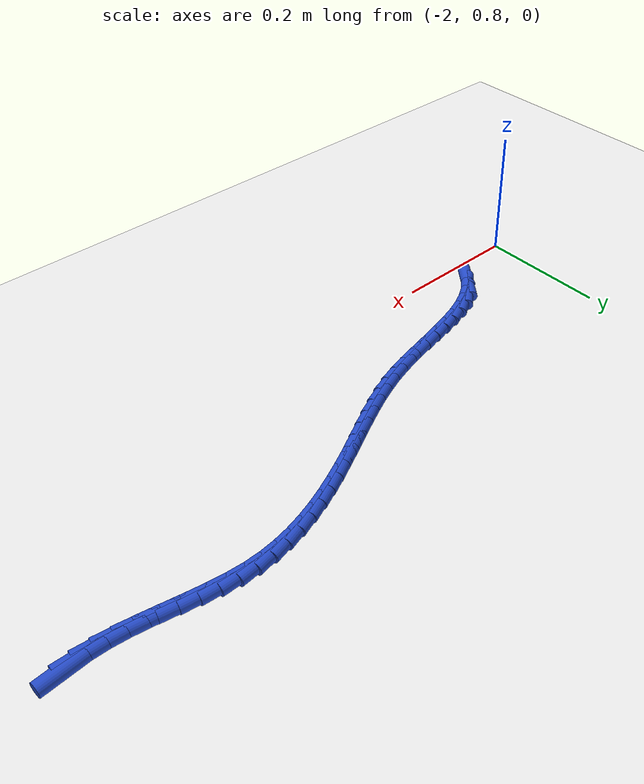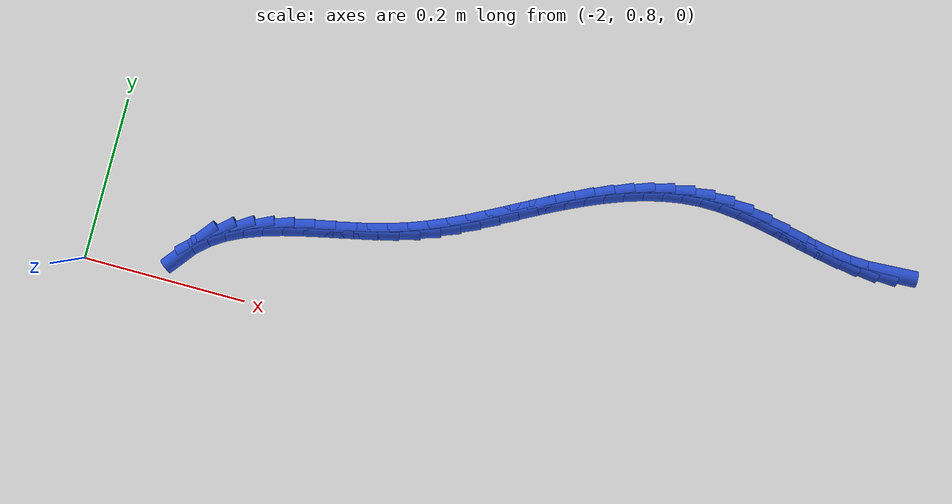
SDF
<sdf version="1.6">
 <world name="default">
  <model name="ground_plane">
   <static>1</static>
   <link name="link">
    <collision name="collision">
     <geometry><plane><normal>0 0 1</normal><size>100 100</size></plane></geometry>
     <surface><friction><ode><mu>100</mu><mu2>50</mu2></ode></friction></surface>
    </collision>
    <visual name="visual">
     <cast_shadows>0</cast_shadows>
     <geometry><plane><normal>0 0 1</normal><size>100 100</size></plane></geometry>
     <material>
      <script><uri>file://media/materials/scripts/gazebo.material</uri><name>Gazebo/WhiteGlow</name></script>
     </material>
    </visual>
   </link>
  </model>
  <model name="line">
   <link name="link_72">
    <pose>-1.06046396266168 1.0387354085762412 0.01 0 1.57 0.05624951157760972</pose>
    <collision name="collision">
     <geometry><cylinder><radius>0.01</radius><length>0.08</length></cylinder></geometry>
    </collision>
    <visual name="visual">
     <material>
      <script><name>Gazebo/Blue</name><uri>file://media/materials/scripts/gazebo.material</uri></script>
     </material>
     <geometry><cylinder><radius>0.01</radius><length>0.08</length></cylinder></geometry>
    </visual>
   </link>
   <link name="link_73">
    <pose>-1.0832203736721846 1.0374540198452828 0.01 0 1.57 -0.04786980906195709</pose>
    <collision name="collision">
     <geometry><cylinder><radius>0.01</radius><length>0.08</length></cylinder></geometry>
    </collision>
    <visual name="visual">
     <material>
      <script><name>Gazebo/Blue</name><uri>file://media/materials/scripts/gazebo.material</uri></script>
     </material>
     <geometry><cylinder><radius>0.01</radius><length>0.08</length></cylinder></geometry>
    </visual>
   </link>
   <link name="link_74">
    <pose>-1.1063829769597664 1.0385636569562495 0.01 0 1.57 -0.12462992173371414</pose>
    <collision name="collision">
     <geometry><cylinder><radius>0.01</radius><length>0.08</length></cylinder></geometry>
    </collision>
    <visual name="visual">
     <material>
      <script><name>Gazebo/Blue</name><uri>file://media/materials/scripts/gazebo.material</uri></script>
     </material>
     <geometry><cylinder><radius>0.01</radius><length>0.08</length></cylinder></geometry>
    </visual>
   </link>
   <link name="link_75">
    <pose>-1.1298830468937548 1.041507727681919 0.01 0 1.57 -0.17579058910191128</pose>
    <collision name="collision">
     <geometry><cylinder><radius>0.01</radius><length>0.08</length></cylinder></geometry>
    </collision>
    <visual name="visual">
     <material>
      <script><name>Gazebo/Blue</name><uri>file://media/materials/scripts/gazebo.material</uri></script>
     </material>
     <geometry><cylinder><radius>0.01</radius><length>0.08</length></cylinder></geometry>
    </visual>
   </link>
   <link name="link_76">
    <pose>-1.1536518578434793 1.0457296397950673 0.01 0 1.57 -0.20338151477144173</pose>
    <collision name="collision">
     <geometry><cylinder><radius>0.01</radius><length>0.08</length></cylinder></geometry>
    </collision>
    <visual name="visual">
     <material>
      <script><name>Gazebo/Blue</name><uri>file://media/materials/scripts/gazebo.material</uri></script>
     </material>
     <geometry><cylinder><radius>0.01</radius><length>0.08</length></cylinder></geometry>
    </visual>
   </link>
   <link name="link_77">
    <pose>-1.1776206841782693 1.0506728010684716 0.01 0 1.57 -0.20885109954804257</pose>
    <collision name="collision">
     <geometry><cylinder><radius>0.01</radius><length>0.08</length></cylinder></geometry>
    </collision>
    <visual name="visual">
     <material>
      <script><name>Gazebo/Blue</name><uri>file://media/materials/scripts/gazebo.material</uri></script>
     </material>
     <geometry><cylinder><radius>0.01</radius><length>0.08</length></cylinder></geometry>
    </visual>
   </link>
   <link name="link_78">
    <pose>-1.2017208002674544 1.0557806192749093 0.01 0 1.57 -0.19274914241024937</pose>
    <collision name="collision">
     <geometry><cylinder><radius>0.01</radius><length>0.08</length></cylinder></geometry>
    </collision>
    <visual name="visual">
     <material>
      <script><name>Gazebo/Blue</name><uri>file://media/materials/scripts/gazebo.material</uri></script>
     </material>
     <geometry><cylinder><radius>0.01</radius><length>0.08</length></cylinder></geometry>
    </visual>
   </link>
   <link name="link_79">
    <pose>-1.2258834804803633 1.0604965021871566 0.01 0 1.57 -0.1547097906782739</pose>
    <collision name="collision">
     <geometry><cylinder><radius>0.01</radius><length>0.08</length></cylinder></geometry>
    </collision>
    <visual name="visual">
     <material>
      <script><name>Gazebo/Blue</name><uri>file://media/materials/scripts/gazebo.material</uri></script>
     </material>
     <geometry><cylinder><radius>0.01</radius><length>0.08</length></cylinder></geometry>
    </visual>
   </link>
   <link name="link_80">
    <pose>-1.2500399991863256 1.0642638575779906 0.01 0 1.57 -0.09366541770067531</pose>
    <collision name="collision">
     <geometry><cylinder><radius>0.01</radius><length>0.08</length></cylinder></geometry>
    </collision>
    <visual name="visual">
     <material>
      <script><name>Gazebo/Blue</name><uri>file://media/materials/scripts/gazebo.material</uri></script>
     </material>
     <geometry><cylinder><radius>0.01</radius><length>0.08</length></cylinder></geometry>
    </visual>
   </link>
   <link name="link_81">
    <pose>-1.2741216307546708 1.066526093220188 0.01 0 1.57 -0.008721796539898302</pose>
    <collision name="collision">
     <geometry><cylinder><radius>0.01</radius><length>0.08</length></cylinder></geometry>
    </collision>
    <visual name="visual">
     <material>
      <script><name>Gazebo/Blue</name><uri>file://media/materials/scripts/gazebo.material</uri></script>
     </material>
     <geometry><cylinder><radius>0.01</radius><length>0.08</length></cylinder></geometry>
    </visual>
   </link>
   <link name="link_82">
    <pose>-1.2980600378528797 1.0667348844306455 0.01 0 1.57 0.08647618509906822</pose>
    <collision name="collision">
     <geometry><cylinder><radius>0.01</radius><length>0.08</length></cylinder></geometry>
    </collision>
    <visual name="visual">
     <material>
      <script><name>Gazebo/Blue</name><uri>file://media/materials/scripts/gazebo.material</uri></script>
     </material>
     <geometry><cylinder><radius>0.01</radius><length>0.08</length></cylinder></geometry>
    </visual>
   </link>
   <link name="link_83">
    <pose>-1.3218026018359992 1.064676584768645 0.01 0 1.57 0.17247524556729593</pose>
    <collision name="collision">
     <geometry><cylinder><radius>0.01</radius><length>0.08</length></cylinder></geometry>
    </collision>
    <visual name="visual">
     <material>
      <script><name>Gazebo/Blue</name><uri>file://media/materials/scripts/gazebo.material</uri></script>
     </material>
     <geometry><cylinder><radius>0.01</radius><length>0.08</length></cylinder></geometry>
    </visual>
   </link>
   <link name="link_84">
    <pose>-1.3453174914587496 1.060580147747044 0.01 0 1.57 0.2474472027159994</pose>
    <collision name="collision">
     <geometry><cylinder><radius>0.01</radius><length>0.08</length></cylinder></geometry>
    </collision>
    <visual name="visual">
     <material>
      <script><name>Gazebo/Blue</name><uri>file://media/materials/scripts/gazebo.material</uri></script>
     </material>
     <geometry><cylinder><radius>0.01</radius><length>0.08</length></cylinder></geometry>
    </visual>
   </link>
   <link name="link_85">
    <pose>-1.3685743024062427 1.054704908712613 0.01 0 1.57 0.3114728816057139</pose>
    <collision name="collision">
     <geometry><cylinder><radius>0.01</radius><length>0.08</length></cylinder></geometry>
    </collision>
    <visual name="visual">
     <material>
      <script><name>Gazebo/Blue</name><uri>file://media/materials/scripts/gazebo.material</uri></script>
     </material>
     <geometry><cylinder><radius>0.01</radius><length>0.08</length></cylinder></geometry>
    </visual>
   </link>
   <link name="link_86">
    <pose>-1.3915426303635903 1.047310203012124 0.01 0 1.57 0.3649994658263487</pose>
    <collision name="collision">
     <geometry><cylinder><radius>0.01</radius><length>0.08</length></cylinder></geometry>
    </collision>
    <visual name="visual">
     <material>
      <script><name>Gazebo/Blue</name><uri>file://media/materials/scripts/gazebo.material</uri></script>
     </material>
     <geometry><cylinder><radius>0.01</radius><length>0.08</length></cylinder></geometry>
    </visual>
   </link>
   <link name="link_87">
    <pose>-1.4141920710159026 1.038655365992347 0.01 0 1.57 0.4086146388637475</pose>
    <collision name="collision">
     <geometry><cylinder><radius>0.01</radius><length>0.08</length></cylinder></geometry>
    </collision>
    <visual name="visual">
     <material>
      <script><name>Gazebo/Blue</name><uri>file://media/materials/scripts/gazebo.material</uri></script>
     </material>
     <geometry><cylinder><radius>0.01</radius><length>0.08</length></cylinder></geometry>
    </visual>
   </link>
   <link name="link_88">
    <pose>-1.4364922200482915 1.028999733000054 0.01 0 1.57 0.44288533850997686</pose>
    <collision name="collision">
     <geometry><cylinder><radius>0.01</radius><length>0.08</length></cylinder></geometry>
    </collision>
    <visual name="visual">
     <material>
      <script><name>Gazebo/Blue</name><uri>file://media/materials/scripts/gazebo.material</uri></script>
     </material>
     <geometry><cylinder><radius>0.01</radius><length>0.08</length></cylinder></geometry>
    </visual>
   </link>
   <link name="link_89">
    <pose>-1.4584126731458673 1.018602639382016 0.01 0 1.57 0.46824573908860495</pose>
    <collision name="collision">
     <geometry><cylinder><radius>0.01</radius><length>0.08</length></cylinder></geometry>
    </collision>
    <visual name="visual">
     <material>
      <script><name>Gazebo/Blue</name><uri>file://media/materials/scripts/gazebo.material</uri></script>
     </material>
     <geometry><cylinder><radius>0.01</radius><length>0.08</length></cylinder></geometry>
    </visual>
   </link>
   <link name="link_90">
    <pose>-1.479923650835961 1.0077232269129632 0.01 0 1.57 0.4843762856761829</pose>
    <collision name="collision">
     <geometry><cylinder><radius>0.01</radius><length>0.08</length></cylinder></geometry>
    </collision>
    <visual name="visual">
     <material>
      <script><name>Gazebo/Blue</name><uri>file://media/materials/scripts/gazebo.material</uri></script>
     </material>
     <geometry><cylinder><radius>0.01</radius><length>0.08</length></cylinder></geometry>
    </visual>
   </link>
   <link name="link_91">
    <pose>-1.5010644336563144 0.9965992430272708 0.01 0 1.57 0.49006831949686797</pose>
    <collision name="collision">
     <geometry><cylinder><radius>0.01</radius><length>0.08</length></cylinder></geometry>
    </collision>
    <visual name="visual">
     <material>
      <script><name>Gazebo/Blue</name><uri>file://media/materials/scripts/gazebo.material</uri></script>
     </material>
     <geometry><cylinder><radius>0.01</radius><length>0.08</length></cylinder></geometry>
    </visual>
   </link>
   <link name="link_92">
    <pose>-1.522005042913264 0.9854279325227596 0.01 0 1.57 0.48495443753367795</pose>
    <collision name="collision">
     <geometry><cylinder><radius>0.01</radius><length>0.08</length></cylinder></geometry>
    </collision>
    <visual name="visual">
     <material>
      <script><name>Gazebo/Blue</name><uri>file://media/materials/scripts/gazebo.material</uri></script>
     </material>
     <geometry><cylinder><radius>0.01</radius><length>0.08</length></cylinder></geometry>
    </visual>
   </link>
   <link name="link_93">
    <pose>-1.5429300594402802 0.9744020297508015 0.01 0 1.57 0.46897167493604397</pose>
    <collision name="collision">
     <geometry><cylinder><radius>0.01</radius><length>0.08</length></cylinder></geometry>
    </collision>
    <visual name="visual">
     <material>
      <script><name>Gazebo/Blue</name><uri>file://media/materials/scripts/gazebo.material</uri></script>
     </material>
     <geometry><cylinder><radius>0.01</radius><length>0.08</length></cylinder></geometry>
    </visual>
   </link>
   <link name="link_94">
    <pose>-1.5640240640708292 0.9637142690627678 0.01 0 1.57 0.4422792945330084</pose>
    <collision name="collision">
     <geometry><cylinder><radius>0.01</radius><length>0.08</length></cylinder></geometry>
    </collision>
    <visual name="visual">
     <material>
      <script><name>Gazebo/Blue</name><uri>file://media/materials/scripts/gazebo.material</uri></script>
     </material>
     <geometry><cylinder><radius>0.01</radius><length>0.08</length></cylinder></geometry>
    </visual>
   </link>
   <link name="link_95">
    <pose>-1.585471637638378 0.9535573848100296 0.01 0 1.57 0.4053075068800579</pose>
    <collision name="collision">
     <geometry><cylinder><radius>0.01</radius><length>0.08</length></cylinder></geometry>
    </collision>
    <visual name="visual">
     <material>
      <script><name>Gazebo/Blue</name><uri>file://media/materials/scripts/gazebo.material</uri></script>
     </material>
     <geometry><cylinder><radius>0.01</radius><length>0.08</length></cylinder></geometry>
    </visual>
   </link>
   <link name="link_96">
    <pose>-1.6074573609763947 0.9441241113439587 0.01 0 1.57 0.3588192412352773</pose>
    <collision name="collision">
     <geometry><cylinder><radius>0.01</radius><length>0.08</length></cylinder></geometry>
    </collision>
    <visual name="visual">
     <material>
      <script><name>Gazebo/Blue</name><uri>file://media/materials/scripts/gazebo.material</uri></script>
     </material>
     <geometry><cylinder><radius>0.01</radius><length>0.08</length></cylinder></geometry>
    </visual>
   </link>
   <link name="link_97">
    <pose>-1.6301658149183462 0.9356071830159265 0.01 0 1.57 0.3043173310538755</pose>
    <collision name="collision">
     <geometry><cylinder><radius>0.01</radius><length>0.08</length></cylinder></geometry>
    </collision>
    <visual name="visual">
     <material>
      <script><name>Gazebo/Blue</name><uri>file://media/materials/scripts/gazebo.material</uri></script>
     </material>
     <geometry><cylinder><radius>0.01</radius><length>0.08</length></cylinder></geometry>
    </visual>
   </link>
   <link name="link_98">
    <pose>-1.6537748708994935 0.9281922146343788 0.01 0 1.57 0.25507290129477644</pose>
    <collision name="collision">
     <geometry><cylinder><radius>0.01</radius><length>0.08</length></cylinder></geometry>
    </collision>
    <visual name="visual">
     <material>
      <script><name>Gazebo/Blue</name><uri>file://media/materials/scripts/gazebo.material</uri></script>
     </material>
     <geometry><cylinder><radius>0.01</radius><length>0.08</length></cylinder></geometry>
    </visual>
   </link>
   <link name="link_99">
    <pose>-1.67822792825987 0.9218160156610782 0.01 0 1.57 0.22492422806569026</pose>
    <collision name="collision">
     <geometry><cylinder><radius>0.01</radius><length>0.08</length></cylinder></geometry>
    </collision>
    <visual name="visual">
     <material>
      <script><name>Gazebo/Blue</name><uri>file://media/materials/scripts/gazebo.material</uri></script>
     </material>
     <geometry><cylinder><radius>0.01</radius><length>0.08</length></cylinder></geometry>
    </visual>
   </link>
   <link name="link_100">
    <pose>-1.703178225076942 0.9161074967715482 0.01 0 1.57 0.21323288389922973</pose>
    <collision name="collision">
     <geometry><cylinder><radius>0.01</radius><length>0.08</length></cylinder></geometry>
    </collision>
    <visual name="visual">
     <material>
      <script><name>Gazebo/Blue</name><uri>file://media/materials/scripts/gazebo.material</uri></script>
     </material>
     <geometry><cylinder><radius>0.01</radius><length>0.08</length></cylinder></geometry>
    </visual>
   </link>
   <link name="link_101">
    <pose>-1.7282609934033621 0.9106764619103341 0.01 0 1.57 0.21949018105076332</pose>
    <collision name="collision">
     <geometry><cylinder><radius>0.01</radius><length>0.08</length></cylinder></geometry>
    </collision>
    <visual name="visual">
     <material>
      <script><name>Gazebo/Blue</name><uri>file://media/materials/scripts/gazebo.material</uri></script>
     </material>
     <geometry><cylinder><radius>0.01</radius><length>0.08</length></cylinder></geometry>
    </visual>
   </link>
   <link name="link_102">
    <pose>-1.7531114652917867 0.905132715021981 0.01 0 1.57 0.24433061902375822</pose>
    <collision name="collision">
     <geometry><cylinder><radius>0.01</radius><length>0.08</length></cylinder></geometry>
    </collision>
    <visual name="visual">
     <material>
      <script><name>Gazebo/Blue</name><uri>file://media/materials/scripts/gazebo.material</uri></script>
     </material>
     <geometry><cylinder><radius>0.01</radius><length>0.08</length></cylinder></geometry>
    </visual>
   </link>
   <link name="link_103">
    <pose>-1.7773648727948703 0.8990860600510344 0.01 0 1.57 0.28957635305568613</pose>
    <collision name="collision">
     <geometry><cylinder><radius>0.01</radius><length>0.08</length></cylinder></geometry>
    </collision>
    <visual name="visual">
     <material>
      <script><name>Gazebo/Blue</name><uri>file://media/materials/scripts/gazebo.material</uri></script>
     </material>
     <geometry><cylinder><radius>0.01</radius><length>0.08</length></cylinder></geometry>
    </visual>
   </link>
   <link name="link_104">
    <pose>-1.8006564479652671 0.8921463009420394 0.01 0 1.57 0.358219491051253</pose>
    <collision name="collision">
     <geometry><cylinder><radius>0.01</radius><length>0.08</length></cylinder></geometry>
    </collision>
    <visual name="visual">
     <material>
      <script><name>Gazebo/Blue</name><uri>file://media/materials/scripts/gazebo.material</uri></script>
     </material>
     <geometry><cylinder><radius>0.01</radius><length>0.08</length></cylinder></geometry>
    </visual>
   </link>
   <link name="link_105">
    <pose>-1.8226214228556312 0.883923241639541 0.01 0 1.57 0.454122527125674</pose>
    <collision name="collision">
     <geometry><cylinder><radius>0.01</radius><length>0.08</length></cylinder></geometry>
    </collision>
    <visual name="visual">
     <material>
      <script><name>Gazebo/Blue</name><uri>file://media/materials/scripts/gazebo.material</uri></script>
     </material>
     <geometry><cylinder><radius>0.01</radius><length>0.08</length></cylinder></geometry>
    </visual>
   </link>
   <link name="link_106">
    <pose>-1.8428950295186173 0.874026686088084 0.01 0 1.57 0.5809494316735487</pose>
    <collision name="collision">
     <geometry><cylinder><radius>0.01</radius><length>0.08</length></cylinder></geometry>
    </collision>
    <visual name="visual">
     <material>
      <script><name>Gazebo/Blue</name><uri>file://media/materials/scripts/gazebo.material</uri></script>
     </material>
     <geometry><cylinder><radius>0.01</radius><length>0.08</length></cylinder></geometry>
    </visual>
   </link>
   <link name="link_107">
    <pose>-1.8611125000068802 0.8620664382322144 0.01 0 1.57 0.7395971888846131</pose>
    <collision name="collision">
     <geometry><cylinder><radius>0.01</radius><length>0.08</length></cylinder></geometry>
    </collision>
    <visual name="visual">
     <material>
      <script><name>Gazebo/Blue</name><uri>file://media/materials/scripts/gazebo.material</uri></script>
     </material>
     <geometry><cylinder><radius>0.01</radius><length>0.08</length></cylinder></geometry>
    </visual>
   </link>
   <link name="link_108">
    <pose>-1.8769102276098624 0.8476533631759922 0.01 0 1.57 0.9090441128880818</pose>
    <collision name="collision">
     <geometry><cylinder><radius>0.01</radius><length>0.08</length></cylinder></geometry>
    </collision>
    <visual name="visual">
     <material>
      <script><name>Gazebo/Blue</name><uri>file://media/materials/scripts/gazebo.material</uri></script>
     </material>
     <geometry><cylinder><radius>0.01</radius><length>0.08</length></cylinder></geometry>
    </visual>
   </link>
  </model>
 </world>
</sdf>
